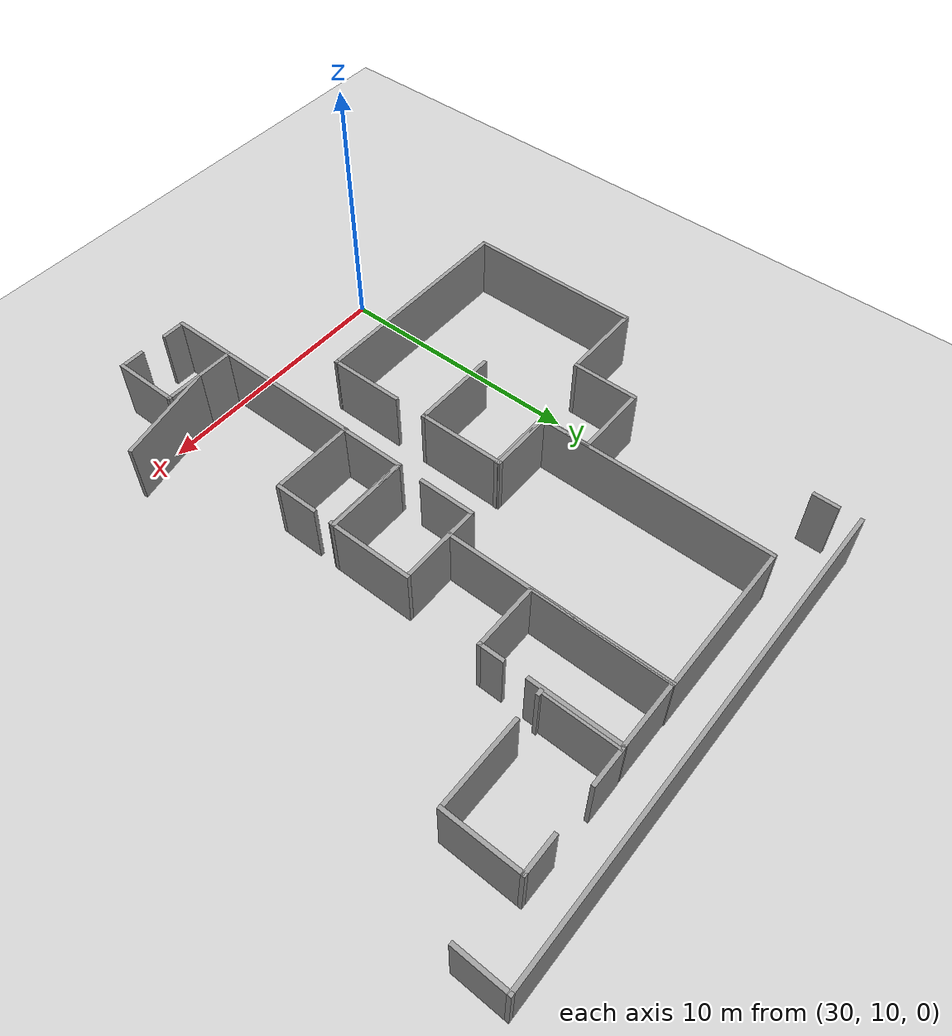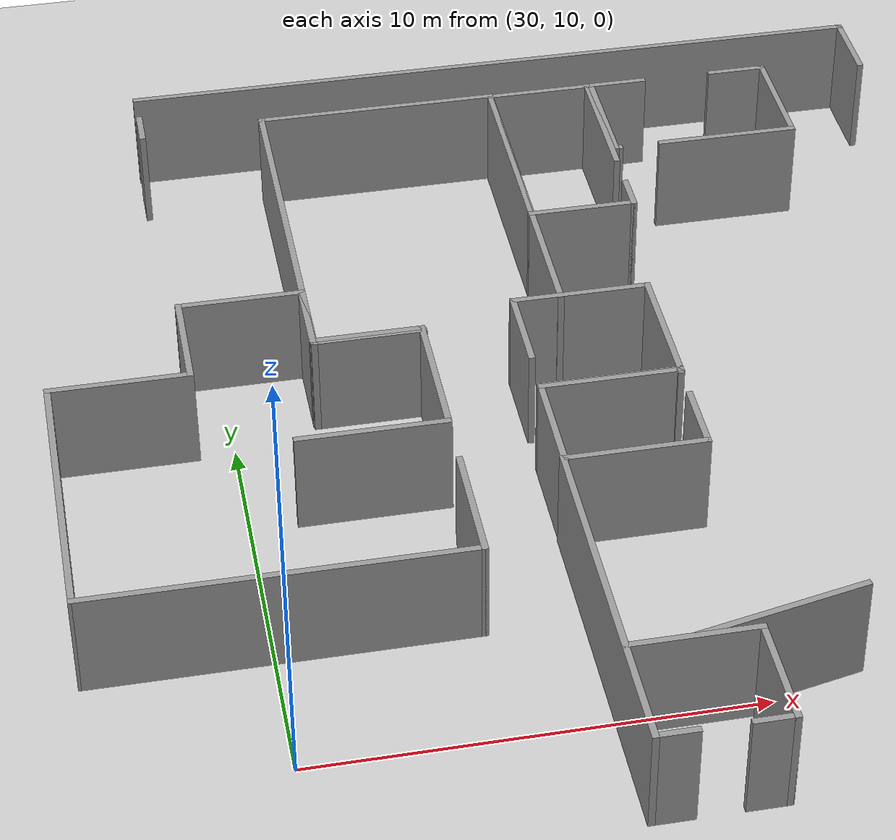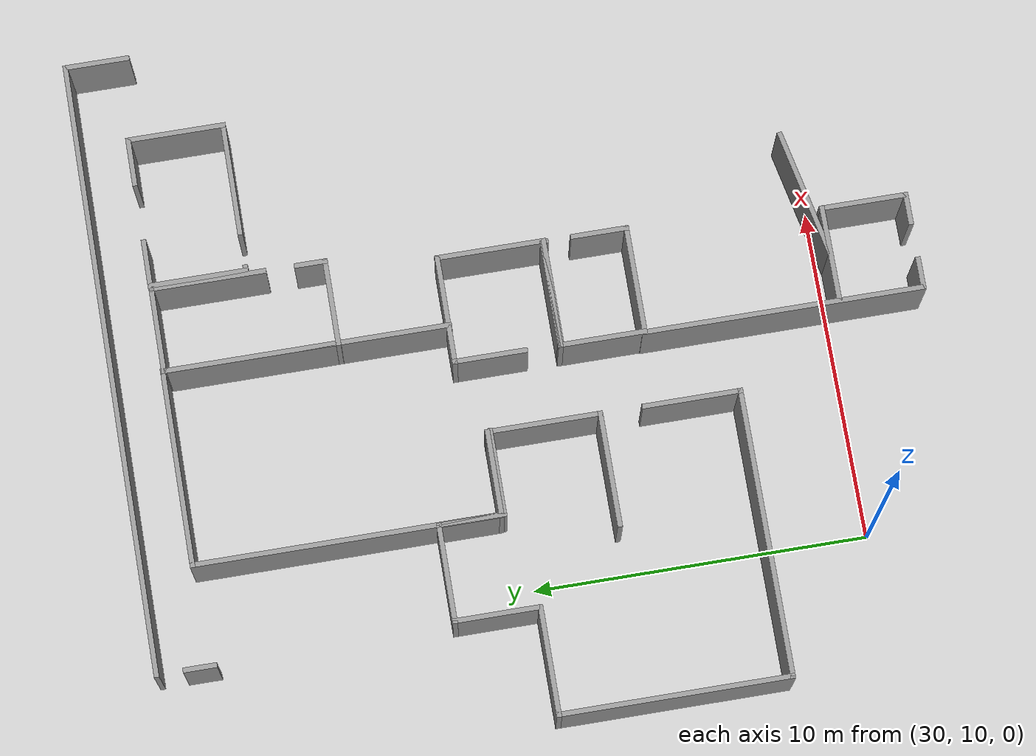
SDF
<sdf version="1.6">
 <world name="default">
  <model name="ground_plane">
   <static>1</static>
   <link name="link">
    <collision name="collision">
     <geometry><plane><normal>0 0 1</normal><size>100 100</size></plane></geometry>
     <surface>
      <contact><collide_bitmask>65535</collide_bitmask></contact>
      <friction><ode><mu>100</mu><mu2>50</mu2></ode></friction>
     </surface>
    </collision>
    <visual name="visual">
     <cast_shadows>0</cast_shadows>
     <geometry><plane><normal>0 0 1</normal><size>100 100</size></plane></geometry>
     <material>
      <script><uri>file://media/materials/scripts/gazebo.material</uri><name>Gazebo/Grey</name></script>
     </material>
    </visual>
   </link>
  </model>
  <model name="198">
   <pose>30.2166 17.8159 0 0 -0 0</pose>
   <link name="Wall_0">
    <collision name="Wall_0_Collision">
     <geometry><box><size>8.701 0.15 2.5</size></box></geometry>
     <pose>0 0 1.25 0 -0 0</pose>
    </collision>
    <visual name="Wall_0_Visual">
     <pose>0 0 1.25 0 -0 0</pose>
     <geometry><box><size>8.701 0.15 2.5</size></box></geometry>
     <material>
      <script><uri>file://media/materials/scripts/gazebo.material</uri><name>Gazebo/Grey</name></script>
      <ambient>1 1 1 1</ambient>
     </material>
     <meta><layer>0</layer></meta>
    </visual>
    <pose>0 -4.6835 0 0 -0 -0.000117</pose>
   </link>
   <link name="Wall_10">
    <collision name="Wall_10_Collision">
     <geometry><box><size>3.5 0.15 2.5</size></box></geometry>
     <pose>0 0 1.25 0 -0 0</pose>
    </collision>
    <visual name="Wall_10_Visual">
     <pose>0 0 1.25 0 -0 0</pose>
     <geometry><box><size>3.5 0.15 2.5</size></box></geometry>
     <material>
      <script><uri>file://media/materials/scripts/gazebo.material</uri><name>Gazebo/Grey</name></script>
      <ambient>1 1 1 1</ambient>
     </material>
     <meta><layer>0</layer></meta>
    </visual>
    <pose>2.6005 -0.515996 0 0 -0 3.14159</pose>
   </link>
   <link name="Wall_12">
    <collision name="Wall_12_Collision">
     <geometry><box><size>3 0.15 2.5</size></box></geometry>
     <pose>0 0 1.25 0 -0 0</pose>
    </collision>
    <visual name="Wall_12_Visual">
     <pose>0 0 1.25 0 -0 0</pose>
     <geometry><box><size>3 0.15 2.5</size></box></geometry>
     <material>
      <script><uri>file://media/materials/scripts/gazebo.material</uri><name>Gazebo/Grey</name></script>
      <ambient>1 1 1 1</ambient>
     </material>
     <meta><layer>0</layer></meta>
    </visual>
    <pose>4.2755 -3.259 0 0 -0 1.5708</pose>
   </link>
   <link name="Wall_2">
    <collision name="Wall_2_Collision">
     <geometry><box><size>2.667 0.15 2.5</size></box></geometry>
     <pose>0 0 1.25 0 -0 0</pose>
    </collision>
    <visual name="Wall_2_Visual">
     <pose>0 0 1.25 0 -0 0</pose>
     <geometry><box><size>2.667 0.15 2.5</size></box></geometry>
     <material>
      <script><uri>file://media/materials/scripts/gazebo.material</uri><name>Gazebo/Grey</name></script>
      <ambient>1 1 1 1</ambient>
     </material>
     <meta><layer>0</layer></meta>
    </visual>
    <pose>3.017 2.834 0 0 -0 3.14159</pose>
   </link>
   <link name="Wall_3">
    <collision name="Wall_3_Collision">
     <geometry><box><size>2 0.15 2.5</size></box></geometry>
     <pose>0 0 1.25 0 -0 0</pose>
    </collision>
    <visual name="Wall_3_Visual">
     <pose>0 0 1.25 0 -0 0</pose>
     <geometry><box><size>2 0.15 2.5</size></box></geometry>
     <material>
      <script><uri>file://media/materials/scripts/gazebo.material</uri><name>Gazebo/Grey</name></script>
      <ambient>1 1 1 1</ambient>
     </material>
     <meta><layer>0</layer></meta>
    </visual>
    <pose>1.7585 3.759 0 0 -0 1.5708</pose>
   </link>
   <link name="Wall_4">
    <collision name="Wall_4_Collision">
     <geometry><box><size>3 0.15 2.5</size></box></geometry>
     <pose>0 0 1.25 0 -0 0</pose>
    </collision>
    <visual name="Wall_4_Visual">
     <pose>0 0 1.25 0 -0 0</pose>
     <geometry><box><size>3 0.15 2.5</size></box></geometry>
     <material>
      <script><uri>file://media/materials/scripts/gazebo.material</uri><name>Gazebo/Grey</name></script>
      <ambient>1 1 1 1</ambient>
     </material>
     <meta><layer>0</layer></meta>
    </visual>
    <pose>0.3335 4.684 0 0 -0 3.14159</pose>
   </link>
   <link name="Wall_5">
    <collision name="Wall_5_Collision">
     <geometry><box><size>2.667 0.15 2.5</size></box></geometry>
     <pose>0 0 1.25 0 -0 0</pose>
    </collision>
    <visual name="Wall_5_Visual">
     <pose>0 0 1.25 0 -0 0</pose>
     <geometry><box><size>2.667 0.15 2.5</size></box></geometry>
     <material>
      <script><uri>file://media/materials/scripts/gazebo.material</uri><name>Gazebo/Grey</name></script>
      <ambient>1 1 1 1</ambient>
     </material>
     <meta><layer>0</layer></meta>
    </visual>
    <pose>-1.0915 3.4255 0 0 -0 -1.5708</pose>
   </link>
   <link name="Wall_6">
    <collision name="Wall_6_Collision">
     <geometry><box><size>3.334 0.15 2.5</size></box></geometry>
     <pose>0 0 1.25 0 -0 0</pose>
    </collision>
    <visual name="Wall_6_Visual">
     <pose>0 0 1.25 0 -0 0</pose>
     <geometry><box><size>3.334 0.15 2.5</size></box></geometry>
     <material>
      <script><uri>file://media/materials/scripts/gazebo.material</uri><name>Gazebo/Grey</name></script>
      <ambient>1 1 1 1</ambient>
     </material>
     <meta><layer>0</layer></meta>
    </visual>
    <pose>-2.6835 2.167 0 0 -0 3.14159</pose>
   </link>
   <link name="Wall_7">
    <collision name="Wall_7_Collision">
     <geometry><box><size>7 0.15 2.5</size></box></geometry>
     <pose>0 0 1.25 0 -0 0</pose>
    </collision>
    <visual name="Wall_7_Visual">
     <pose>0 0 1.25 0 -0 0</pose>
     <geometry><box><size>7 0.15 2.5</size></box></geometry>
     <material>
      <script><uri>file://media/materials/scripts/gazebo.material</uri><name>Gazebo/Grey</name></script>
      <ambient>1 1 1 1</ambient>
     </material>
     <meta><layer>0</layer></meta>
    </visual>
    <pose>-4.2755 -1.258 0 0 -0 -1.5708</pose>
   </link>
   <link name="Wall_9">
    <collision name="Wall_9_Collision">
     <geometry><box><size>3.5 0.15 2.5</size></box></geometry>
     <pose>0 0 1.25 0 -0 0</pose>
    </collision>
    <visual name="Wall_9_Visual">
     <pose>0 0 1.25 0 -0 0</pose>
     <geometry><box><size>3.5 0.15 2.5</size></box></geometry>
     <material>
      <script><uri>file://media/materials/scripts/gazebo.material</uri><name>Gazebo/Grey</name></script>
      <ambient>1 1 1 1</ambient>
     </material>
     <meta><layer>0</layer></meta>
    </visual>
    <pose>4.2755 1.159 0 0 -0 -1.5708</pose>
   </link>
   <static>1</static>
  </model>
  <model name="113">
   <pose>34.9225 25.1588 0 0 -0 0</pose>
   <link name="Wall_27">
    <collision name="Wall_27_Collision">
     <geometry><box><size>2.667 0.15 2.5</size></box></geometry>
     <pose>0 0 1.25 0 -0 0</pose>
    </collision>
    <visual name="Wall_27_Visual">
     <pose>0 0 1.25 0 -0 0</pose>
     <geometry><box><size>2.667 0.15 2.5</size></box></geometry>
     <material>
      <script><uri>file://media/materials/scripts/gazebo.material</uri><name>Gazebo/Grey</name></script>
      <ambient>1 1 1 1</ambient>
     </material>
     <meta><layer>0</layer></meta>
    </visual>
    <pose>-1.6665 -4.5925 0 0 -0 3.14159</pose>
   </link>
   <link name="Wall_28">
    <collision name="Wall_28_Collision">
     <geometry><box><size>9.335 0.15 2.5</size></box></geometry>
     <pose>0 0 1.25 0 -0 0</pose>
    </collision>
    <visual name="Wall_28_Visual">
     <pose>0 0 1.25 0 -0 0</pose>
     <geometry><box><size>9.335 0.15 2.5</size></box></geometry>
     <material>
      <script><uri>file://media/materials/scripts/gazebo.material</uri><name>Gazebo/Grey</name></script>
      <ambient>1 1 1 1</ambient>
     </material>
     <meta><layer>0</layer></meta>
    </visual>
    <pose>-2.925 0 0 0 -0 1.5708</pose>
   </link>
   <link name="Wall_29">
    <collision name="Wall_29_Collision">
     <geometry><box><size>6 0.15 2.5</size></box></geometry>
     <pose>0 0 1.25 0 -0 0</pose>
    </collision>
    <visual name="Wall_29_Visual">
     <pose>0 0 1.25 0 -0 0</pose>
     <geometry><box><size>6 0.15 2.5</size></box></geometry>
     <material>
      <script><uri>file://media/materials/scripts/gazebo.material</uri><name>Gazebo/Grey</name></script>
      <ambient>1 1 1 1</ambient>
     </material>
     <meta><layer>0</layer></meta>
    </visual>
    <pose>-0 4.5925 0 0 -0 0</pose>
   </link>
   <link name="Wall_30">
    <collision name="Wall_30_Collision">
     <geometry><box><size>8.668 0.15 2.5</size></box></geometry>
     <pose>0 0 1.25 0 -0 0</pose>
    </collision>
    <visual name="Wall_30_Visual">
     <pose>0 0 1.25 0 -0 0</pose>
     <geometry><box><size>8.668 0.15 2.5</size></box></geometry>
     <material>
      <script><uri>file://media/materials/scripts/gazebo.material</uri><name>Gazebo/Grey</name></script>
      <ambient>1 1 1 1</ambient>
     </material>
     <meta><layer>0</layer></meta>
    </visual>
    <pose>2.925 0.3335 0 0 -0 -1.5708</pose>
   </link>
   <static>1</static>
  </model>
  <model name="195D">
   <pose>38.3049 16.8472 0 0 -0 0</pose>
   <link name="Wall_39">
    <collision name="Wall_39_Collision">
     <geometry><box><size>3.334 0.15 2.5</size></box></geometry>
     <pose>0 0 1.25 0 -0 0</pose>
    </collision>
    <visual name="Wall_39_Visual">
     <pose>0 0 1.25 0 -0 0</pose>
     <geometry><box><size>3.334 0.15 2.5</size></box></geometry>
     <material>
      <script><uri>file://media/materials/scripts/gazebo.material</uri><name>Gazebo/Grey</name></script>
      <ambient>1 1 1 1</ambient>
     </material>
     <meta><layer>0</layer></meta>
    </visual>
    <pose>0 -1.25855 0 0 -0 -6e-05</pose>
   </link>
   <link name="Wall_41">
    <collision name="Wall_41_Collision">
     <geometry><box><size>3.33384 0.15 2.5</size></box></geometry>
     <pose>0 0 1.25 0 -0 0</pose>
    </collision>
    <visual name="Wall_41_Visual">
     <pose>0 0 1.25 0 -0 0</pose>
     <geometry><box><size>3.33384 0.15 2.5</size></box></geometry>
     <material>
      <script><uri>file://media/materials/scripts/gazebo.material</uri><name>Gazebo/Grey</name></script>
      <ambient>1 1 1 1</ambient>
     </material>
     <meta><layer>0</layer></meta>
    </visual>
    <pose>0 1.25846 0 0 -0 3.14153</pose>
   </link>
   <link name="Wall_42">
    <collision name="Wall_42_Collision">
     <geometry><box><size>2.66719 0.15 2.5</size></box></geometry>
     <pose>0 0 1.25 0 -0 0</pose>
    </collision>
    <visual name="Wall_42_Visual">
     <pose>0 0 1.25 0 -0 0</pose>
     <geometry><box><size>2.66719 0.15 2.5</size></box></geometry>
     <material>
      <script><uri>file://media/materials/scripts/gazebo.material</uri><name>Gazebo/Grey</name></script>
      <ambient>1 1 1 1</ambient>
     </material>
     <meta><layer>0</layer></meta>
    </visual>
    <pose>-1.59192 5e-05 0 0 -0 -1.5708</pose>
   </link>
   <link name="Wall_44">
    <collision name="Wall_44_Collision">
     <geometry><box><size>1.75 0.15 2.5</size></box></geometry>
     <pose>0 0 1.25 0 -0 0</pose>
    </collision>
    <visual name="Wall_44_Visual">
     <pose>0 0 1.25 0 -0 0</pose>
     <geometry><box><size>1.75 0.15 2.5</size></box></geometry>
     <material>
      <script><uri>file://media/materials/scripts/gazebo.material</uri><name>Gazebo/Grey</name></script>
      <ambient>1 1 1 1</ambient>
     </material>
     <meta><layer>0</layer></meta>
    </visual>
    <pose>1.59192 -0.45864 0 0 -0 1.5708</pose>
   </link>
   <link name="Wall_46">
    <collision name="Wall_46_Collision">
     <geometry><box><size>0.25 0.15 2.5</size></box></geometry>
     <pose>0 0 1.25 0 -0 0</pose>
    </collision>
    <visual name="Wall_46_Visual">
     <pose>0 0 1.25 0 -0 0</pose>
     <geometry><box><size>0.25 0.15 2.5</size></box></geometry>
     <material>
      <script><uri>file://media/materials/scripts/gazebo.material</uri><name>Gazebo/Grey</name></script>
      <ambient>1 1 1 1</ambient>
     </material>
     <meta><layer>0</layer></meta>
    </visual>
    <pose>1.59192 1.20836 0 0 -0 -1.5708</pose>
   </link>
   <static>1</static>
  </model>
  <model name="195C">
   <pose>38.1154 11.4255 0 0 -0 0</pose>
   <link name="Wall_49">
    <collision name="Wall_49_Collision">
     <geometry><box><size>8.5 0.15 2.5</size></box></geometry>
     <pose>0 0 1.25 0 -0 0</pose>
    </collision>
    <visual name="Wall_49_Visual">
     <pose>0 0 1.25 0 -0 0</pose>
     <geometry><box><size>8.5 0.15 2.5</size></box></geometry>
     <material>
      <script><uri>file://media/materials/scripts/gazebo.material</uri><name>Gazebo/Grey</name></script>
      <ambient>1 1 1 1</ambient>
     </material>
     <meta><layer>0</layer></meta>
    </visual>
    <pose>-1.425 0 0 0 -0 -1.5708</pose>
   </link>
   <link name="Wall_51">
    <collision name="Wall_51_Collision">
     <geometry><box><size>2.667 0.15 2.5</size></box></geometry>
     <pose>0 0 1.25 0 -0 0</pose>
    </collision>
    <visual name="Wall_51_Visual">
     <pose>0 0 1.25 0 -0 0</pose>
     <geometry><box><size>2.667 0.15 2.5</size></box></geometry>
     <material>
      <script><uri>file://media/materials/scripts/gazebo.material</uri><name>Gazebo/Grey</name></script>
      <ambient>1 1 1 1</ambient>
     </material>
     <meta><layer>0</layer></meta>
    </visual>
    <pose>1.425 -2.9165 0 0 -0 1.5708</pose>
   </link>
   <link name="Wall_52">
    <collision name="Wall_52_Collision">
     <geometry><box><size>3 0.15 2.5</size></box></geometry>
     <pose>0 0 1.25 0 -0 0</pose>
    </collision>
    <visual name="Wall_52_Visual">
     <pose>0 0 1.25 0 -0 0</pose>
     <geometry><box><size>3 0.15 2.5</size></box></geometry>
     <material>
      <script><uri>file://media/materials/scripts/gazebo.material</uri><name>Gazebo/Grey</name></script>
      <ambient>1 1 1 1</ambient>
     </material>
     <meta><layer>0</layer></meta>
    </visual>
    <pose>0 -1.658 0 0 -0 3.14159</pose>
   </link>
   <link name="Wall_54">
    <collision name="Wall_54_Collision">
     <geometry><box><size>1 0.15 2.5</size></box></geometry>
     <pose>0 0 1.25 0 -0 0</pose>
    </collision>
    <visual name="Wall_54_Visual">
     <pose>0 0 1.25 0 -0 0</pose>
     <geometry><box><size>1 0.15 2.5</size></box></geometry>
     <material>
      <script><uri>file://media/materials/scripts/gazebo.material</uri><name>Gazebo/Grey</name></script>
      <ambient>1 1 1 1</ambient>
     </material>
     <meta><layer>0</layer></meta>
    </visual>
    <pose>1 -4.175 0 0 -0 3.14159</pose>
   </link>
   <link name="Wall_56">
    <collision name="Wall_56_Collision">
     <geometry><box><size>1 0.15 2.5</size></box></geometry>
     <pose>0 0 1.25 0 -0 0</pose>
    </collision>
    <visual name="Wall_56_Visual">
     <pose>0 0 1.25 0 -0 0</pose>
     <geometry><box><size>1 0.15 2.5</size></box></geometry>
     <material>
      <script><uri>file://media/materials/scripts/gazebo.material</uri><name>Gazebo/Grey</name></script>
      <ambient>1 1 1 1</ambient>
     </material>
     <meta><layer>0</layer></meta>
    </visual>
    <pose>-1 -4.175 0 0 -0 3.14159</pose>
   </link>
   <static>1</static>
  </model>
  <model name="4m_wall_1">
   <link name="Wall_0">
    <pose>0 0 0 0 -0 1.5708</pose>
    <visual name="Wall_0_Visual">
     <pose>0 0 1.25 0 -0 0</pose>
     <geometry><box><size>4 0.15 2.5</size></box></geometry>
     <material>
      <script><uri>file://media/materials/scripts/gazebo.material</uri><name>Gazebo/Grey</name></script>
      <ambient>1 1 1 1</ambient>
      <shader type="pixel"/>
     </material>
     <meta><layer>0</layer></meta>
    </visual>
    <collision name="Wall_0_Collision">
     <pose>0 0 1.25 0 -0 0</pose>
     <geometry><box><size>4 0.15 2.5</size></box></geometry>
     <surface>
      <friction>
       <ode><mu>1</mu><mu2>1</mu2><fdir1>0 0 0</fdir1><slip1>0</slip1><slip2>0</slip2></ode>
       <torsional>
        <coefficient>1</coefficient>
        <patch_radius>0</patch_radius>
        <surface_radius>0</surface_radius>
        <use_patch_radius>1</use_patch_radius>
        <ode><slip>0</slip></ode>
       </torsional>
      </friction>
      <bounce><restitution_coefficient>0</restitution_coefficient><threshold>1e+06</threshold></bounce>
      <contact>
       <collide_without_contact>0</collide_without_contact>
       <collide_without_contact_bitmask>1</collide_without_contact_bitmask>
       <collide_bitmask>1</collide_bitmask>
       <ode>
        <soft_cfm>0</soft_cfm>
        <soft_erp>0.2</soft_erp>
        <kp>1e+13</kp>
        <kd>1</kd>
        <max_vel>0.01</max_vel>
        <min_depth>0</min_depth>
       </ode>
       <bullet>
        <split_impulse>1</split_impulse>
        <split_impulse_penetration_threshold>-0.01</split_impulse_penetration_threshold>
        <soft_cfm>0</soft_cfm>
        <soft_erp>0.2</soft_erp>
        <kp>1e+13</kp>
        <kd>1</kd>
       </bullet>
      </contact>
     </surface>
    </collision>
   </link>
   <static>1</static>
   <pose>40.0909 10.1885 0 0 0 -1.36305</pose>
  </model>
  <model name="112C">
   <link name="Wall_100">
    <pose>1.584 1.425 0 0 -0 3.14159</pose>
    <visual name="Wall_100_Visual">
     <pose>0 0 1.25 0 -0 0</pose>
     <geometry><box><size>1.5 0.15 2.5</size></box></geometry>
     <material>
      <script><uri>file://media/materials/scripts/gazebo.material</uri><name>Gazebo/Grey</name></script>
      <ambient>1 1 1 1</ambient>
      <shader type="pixel"/>
     </material>
     <meta><layer>0</layer></meta>
    </visual>
    <collision name="Wall_100_Collision">
     <pose>0 0 1.25 0 -0 0</pose>
     <geometry><box><size>1.5 0.15 2.5</size></box></geometry>
     <surface>
      <friction>
       <ode><mu>1</mu><mu2>1</mu2><fdir1>0 0 0</fdir1><slip1>0</slip1><slip2>0</slip2></ode>
       <torsional>
        <coefficient>1</coefficient>
        <patch_radius>0</patch_radius>
        <surface_radius>0</surface_radius>
        <use_patch_radius>1</use_patch_radius>
        <ode><slip>0</slip></ode>
       </torsional>
      </friction>
      <bounce><restitution_coefficient>0</restitution_coefficient><threshold>1e+06</threshold></bounce>
      <contact>
       <collide_without_contact>0</collide_without_contact>
       <collide_without_contact_bitmask>1</collide_without_contact_bitmask>
       <collide_bitmask>1</collide_bitmask>
       <ode>
        <soft_cfm>0</soft_cfm>
        <soft_erp>0.2</soft_erp>
        <kp>1e+13</kp>
        <kd>1</kd>
        <max_vel>0.01</max_vel>
        <min_depth>0</min_depth>
       </ode>
       <bullet>
        <split_impulse>1</split_impulse>
        <split_impulse_penetration_threshold>-0.01</split_impulse_penetration_threshold>
        <soft_cfm>0</soft_cfm>
        <soft_erp>0.2</soft_erp>
        <kp>1e+13</kp>
        <kd>1</kd>
       </bullet>
      </contact>
     </surface>
    </collision>
   </link>
   <link name="Wall_102">
    <pose>-1.584 1.425 0 0 -0 3.14159</pose>
    <visual name="Wall_102_Visual">
     <pose>0 0 1.25 0 -0 0</pose>
     <geometry><box><size>1.5 0.15 2.5</size></box></geometry>
     <material>
      <script><uri>file://media/materials/scripts/gazebo.material</uri><name>Gazebo/Grey</name></script>
      <ambient>1 1 1 1</ambient>
      <shader type="pixel"/>
     </material>
     <meta><layer>0</layer></meta>
    </visual>
    <collision name="Wall_102_Collision">
     <pose>0 0 1.25 0 -0 0</pose>
     <geometry><box><size>1.5 0.15 2.5</size></box></geometry>
     <surface>
      <friction>
       <ode><mu>1</mu><mu2>1</mu2><fdir1>0 0 0</fdir1><slip1>0</slip1><slip2>0</slip2></ode>
       <torsional>
        <coefficient>1</coefficient>
        <patch_radius>0</patch_radius>
        <surface_radius>0</surface_radius>
        <use_patch_radius>1</use_patch_radius>
        <ode><slip>0</slip></ode>
       </torsional>
      </friction>
      <bounce><restitution_coefficient>0</restitution_coefficient><threshold>1e+06</threshold></bounce>
      <contact>
       <collide_without_contact>0</collide_without_contact>
       <collide_without_contact_bitmask>1</collide_without_contact_bitmask>
       <collide_bitmask>1</collide_bitmask>
       <ode>
        <soft_cfm>0</soft_cfm>
        <soft_erp>0.2</soft_erp>
        <kp>1e+13</kp>
        <kd>1</kd>
        <max_vel>0.01</max_vel>
        <min_depth>0</min_depth>
       </ode>
       <bullet>
        <split_impulse>1</split_impulse>
        <split_impulse_penetration_threshold>-0.01</split_impulse_penetration_threshold>
        <soft_cfm>0</soft_cfm>
        <soft_erp>0.2</soft_erp>
        <kp>1e+13</kp>
        <kd>1</kd>
       </bullet>
      </contact>
     </surface>
    </collision>
   </link>
   <link name="Wall_104">
    <pose>0.584 -1.425 0 0 -0 3.14159</pose>
    <visual name="Wall_104_Visual">
     <pose>0 0 1.25 0 -0 0</pose>
     <geometry><box><size>3.5 0.15 2.5</size></box></geometry>
     <material>
      <script><uri>file://media/materials/scripts/gazebo.material</uri><name>Gazebo/Grey</name></script>
      <ambient>1 1 1 1</ambient>
      <shader type="pixel"/>
     </material>
     <meta><layer>0</layer></meta>
    </visual>
    <collision name="Wall_104_Collision">
     <pose>0 0 1.25 0 -0 0</pose>
     <geometry><box><size>3.5 0.15 2.5</size></box></geometry>
     <surface>
      <friction>
       <ode><mu>1</mu><mu2>1</mu2><fdir1>0 0 0</fdir1><slip1>0</slip1><slip2>0</slip2></ode>
       <torsional>
        <coefficient>1</coefficient>
        <patch_radius>0</patch_radius>
        <surface_radius>0</surface_radius>
        <use_patch_radius>1</use_patch_radius>
        <ode><slip>0</slip></ode>
       </torsional>
      </friction>
      <bounce><restitution_coefficient>0</restitution_coefficient><threshold>1e+06</threshold></bounce>
      <contact>
       <collide_without_contact>0</collide_without_contact>
       <collide_without_contact_bitmask>1</collide_without_contact_bitmask>
       <collide_bitmask>1</collide_bitmask>
       <ode>
        <soft_cfm>0</soft_cfm>
        <soft_erp>0.2</soft_erp>
        <kp>1e+13</kp>
        <kd>1</kd>
        <max_vel>0.01</max_vel>
        <min_depth>0</min_depth>
       </ode>
       <bullet>
        <split_impulse>1</split_impulse>
        <split_impulse_penetration_threshold>-0.01</split_impulse_penetration_threshold>
        <soft_cfm>0</soft_cfm>
        <soft_erp>0.2</soft_erp>
        <kp>1e+13</kp>
        <kd>1</kd>
       </bullet>
      </contact>
     </surface>
    </collision>
   </link>
   <link name="Wall_106">
    <pose>-2.209 -1.425 0 0 -0 0</pose>
    <visual name="Wall_106_Visual">
     <pose>0 0 1.25 0 -0 0</pose>
     <geometry><box><size>0.25 0.15 2.5</size></box></geometry>
     <material>
      <script><uri>file://media/materials/scripts/gazebo.material</uri><name>Gazebo/Grey</name></script>
      <ambient>1 1 1 1</ambient>
      <shader type="pixel"/>
     </material>
     <meta><layer>0</layer></meta>
    </visual>
    <collision name="Wall_106_Collision">
     <pose>0 0 1.25 0 -0 0</pose>
     <geometry><box><size>0.25 0.15 2.5</size></box></geometry>
     <surface>
      <friction>
       <ode><mu>1</mu><mu2>1</mu2><fdir1>0 0 0</fdir1><slip1>0</slip1><slip2>0</slip2></ode>
       <torsional>
        <coefficient>1</coefficient>
        <patch_radius>0</patch_radius>
        <surface_radius>0</surface_radius>
        <use_patch_radius>1</use_patch_radius>
        <ode><slip>0</slip></ode>
       </torsional>
      </friction>
      <bounce><restitution_coefficient>0</restitution_coefficient><threshold>1e+06</threshold></bounce>
      <contact>
       <collide_without_contact>0</collide_without_contact>
       <collide_without_contact_bitmask>1</collide_without_contact_bitmask>
       <collide_bitmask>1</collide_bitmask>
       <ode>
        <soft_cfm>0</soft_cfm>
        <soft_erp>0.2</soft_erp>
        <kp>1e+13</kp>
        <kd>1</kd>
        <max_vel>0.01</max_vel>
        <min_depth>0</min_depth>
       </ode>
       <bullet>
        <split_impulse>1</split_impulse>
        <split_impulse_penetration_threshold>-0.01</split_impulse_penetration_threshold>
        <soft_cfm>0</soft_cfm>
        <soft_erp>0.2</soft_erp>
        <kp>1e+13</kp>
        <kd>1</kd>
       </bullet>
      </contact>
     </surface>
    </collision>
   </link>
   <link name="Wall_96">
    <pose>2.259 0 0 0 -0 1.5708</pose>
    <visual name="Wall_96_Visual">
     <pose>0 0 1.25 0 -0 0</pose>
     <geometry><box><size>3 0.15 2.5</size></box></geometry>
     <material>
      <script><uri>file://media/materials/scripts/gazebo.material</uri><name>Gazebo/Grey</name></script>
      <ambient>1 1 1 1</ambient>
      <shader type="pixel"/>
     </material>
     <meta><layer>0</layer></meta>
    </visual>
    <collision name="Wall_96_Collision">
     <pose>0 0 1.25 0 -0 0</pose>
     <geometry><box><size>3 0.15 2.5</size></box></geometry>
     <surface>
      <friction>
       <ode><mu>1</mu><mu2>1</mu2><fdir1>0 0 0</fdir1><slip1>0</slip1><slip2>0</slip2></ode>
       <torsional>
        <coefficient>1</coefficient>
        <patch_radius>0</patch_radius>
        <surface_radius>0</surface_radius>
        <use_patch_radius>1</use_patch_radius>
        <ode><slip>0</slip></ode>
       </torsional>
      </friction>
      <bounce><restitution_coefficient>0</restitution_coefficient><threshold>1e+06</threshold></bounce>
      <contact>
       <collide_without_contact>0</collide_without_contact>
       <collide_without_contact_bitmask>1</collide_without_contact_bitmask>
       <collide_bitmask>1</collide_bitmask>
       <ode>
        <soft_cfm>0</soft_cfm>
        <soft_erp>0.2</soft_erp>
        <kp>1e+13</kp>
        <kd>1</kd>
        <max_vel>0.01</max_vel>
        <min_depth>0</min_depth>
       </ode>
       <bullet>
        <split_impulse>1</split_impulse>
        <split_impulse_penetration_threshold>-0.01</split_impulse_penetration_threshold>
        <soft_cfm>0</soft_cfm>
        <soft_erp>0.2</soft_erp>
        <kp>1e+13</kp>
        <kd>1</kd>
       </bullet>
      </contact>
     </surface>
    </collision>
   </link>
   <link name="Wall_98">
    <pose>-2.259 0 0 0 0 -1.5708</pose>
    <visual name="Wall_98_Visual">
     <pose>0 0 1.25 0 -0 0</pose>
     <geometry><box><size>3 0.15 2.5</size></box></geometry>
     <material>
      <script><uri>file://media/materials/scripts/gazebo.material</uri><name>Gazebo/Grey</name></script>
      <ambient>1 1 1 1</ambient>
      <shader type="pixel"/>
     </material>
     <meta><layer>0</layer></meta>
    </visual>
    <collision name="Wall_98_Collision">
     <pose>0 0 1.25 0 -0 0</pose>
     <geometry><box><size>3 0.15 2.5</size></box></geometry>
     <surface>
      <friction>
       <ode><mu>1</mu><mu2>1</mu2><fdir1>0 0 0</fdir1><slip1>0</slip1><slip2>0</slip2></ode>
       <torsional>
        <coefficient>1</coefficient>
        <patch_radius>0</patch_radius>
        <surface_radius>0</surface_radius>
        <use_patch_radius>1</use_patch_radius>
        <ode><slip>0</slip></ode>
       </torsional>
      </friction>
      <bounce><restitution_coefficient>0</restitution_coefficient><threshold>1e+06</threshold></bounce>
      <contact>
       <collide_without_contact>0</collide_without_contact>
       <collide_without_contact_bitmask>1</collide_without_contact_bitmask>
       <collide_bitmask>1</collide_bitmask>
       <ode>
        <soft_cfm>0</soft_cfm>
        <soft_erp>0.2</soft_erp>
        <kp>1e+13</kp>
        <kd>1</kd>
        <max_vel>0.01</max_vel>
        <min_depth>0</min_depth>
       </ode>
       <bullet>
        <split_impulse>1</split_impulse>
        <split_impulse_penetration_threshold>-0.01</split_impulse_penetration_threshold>
        <soft_cfm>0</soft_cfm>
        <soft_erp>0.2</soft_erp>
        <kp>1e+13</kp>
        <kd>1</kd>
       </bullet>
      </contact>
     </surface>
    </collision>
   </link>
   <static>1</static>
   <pose>42.725 28.3095 0 0 -0 0</pose>
  </model>
  <model name="199C">
   <link name="Wall_58">
    <pose>9.26 0 0 0 -0 1.5708</pose>
    <visual name="Wall_58_Visual">
     <pose>0 0 1.25 0 -0 0</pose>
     <geometry><box><size>2 0.15 2.5</size></box></geometry>
     <material>
      <script><uri>file://media/materials/scripts/gazebo.material</uri><name>Gazebo/Grey</name></script>
      <ambient>1 1 1 1</ambient>
      <shader type="pixel"/>
     </material>
     <meta><layer>0</layer></meta>
    </visual>
    <collision name="Wall_58_Collision">
     <pose>0 0 1.25 0 -0 0</pose>
     <geometry><box><size>2 0.15 2.5</size></box></geometry>
     <surface>
      <friction>
       <ode><mu>1</mu><mu2>1</mu2><fdir1>0 0 0</fdir1><slip1>0</slip1><slip2>0</slip2></ode>
       <torsional>
        <coefficient>1</coefficient>
        <patch_radius>0</patch_radius>
        <surface_radius>0</surface_radius>
        <use_patch_radius>1</use_patch_radius>
        <ode><slip>0</slip></ode>
       </torsional>
      </friction>
      <bounce><restitution_coefficient>0</restitution_coefficient><threshold>1e+06</threshold></bounce>
      <contact>
       <collide_without_contact>0</collide_without_contact>
       <collide_without_contact_bitmask>1</collide_without_contact_bitmask>
       <collide_bitmask>1</collide_bitmask>
       <ode>
        <soft_cfm>0</soft_cfm>
        <soft_erp>0.2</soft_erp>
        <kp>1e+13</kp>
        <kd>1</kd>
        <max_vel>0.01</max_vel>
        <min_depth>0</min_depth>
       </ode>
       <bullet>
        <split_impulse>1</split_impulse>
        <split_impulse_penetration_threshold>-0.01</split_impulse_penetration_threshold>
        <soft_cfm>0</soft_cfm>
        <soft_erp>0.2</soft_erp>
        <kp>1e+13</kp>
        <kd>1</kd>
       </bullet>
      </contact>
     </surface>
    </collision>
   </link>
   <link name="Wall_59">
    <pose>0 0.924999 0 0 -0 3.14159</pose>
    <visual name="Wall_59_Visual">
     <pose>0 0 1.25 0 -0 0</pose>
     <geometry><box><size>18.67 0.15 2.5</size></box></geometry>
     <material>
      <script><uri>file://media/materials/scripts/gazebo.material</uri><name>Gazebo/Grey</name></script>
      <ambient>1 1 1 1</ambient>
      <shader type="pixel"/>
     </material>
     <meta><layer>0</layer></meta>
    </visual>
    <collision name="Wall_59_Collision">
     <pose>0 0 1.25 0 -0 0</pose>
     <geometry><box><size>18.67 0.15 2.5</size></box></geometry>
     <surface>
      <friction>
       <ode><mu>1</mu><mu2>1</mu2><fdir1>0 0 0</fdir1><slip1>0</slip1><slip2>0</slip2></ode>
       <torsional>
        <coefficient>1</coefficient>
        <patch_radius>0</patch_radius>
        <surface_radius>0</surface_radius>
        <use_patch_radius>1</use_patch_radius>
        <ode><slip>0</slip></ode>
       </torsional>
      </friction>
      <bounce><restitution_coefficient>0</restitution_coefficient><threshold>1e+06</threshold></bounce>
      <contact>
       <collide_without_contact>0</collide_without_contact>
       <collide_without_contact_bitmask>1</collide_without_contact_bitmask>
       <collide_bitmask>1</collide_bitmask>
       <ode>
        <soft_cfm>0</soft_cfm>
        <soft_erp>0.2</soft_erp>
        <kp>1e+13</kp>
        <kd>1</kd>
        <max_vel>0.01</max_vel>
        <min_depth>0</min_depth>
       </ode>
       <bullet>
        <split_impulse>1</split_impulse>
        <split_impulse_penetration_threshold>-0.01</split_impulse_penetration_threshold>
        <soft_cfm>0</soft_cfm>
        <soft_erp>0.2</soft_erp>
        <kp>1e+13</kp>
        <kd>1</kd>
       </bullet>
      </contact>
     </surface>
    </collision>
   </link>
   <link name="Wall_63">
    <pose>-9.26 -0.35 0 0 0 -1.5708</pose>
    <visual name="Wall_63_Visual">
     <pose>0 0 1.25 0 -0 0</pose>
     <geometry><box><size>1 0.15 2.5</size></box></geometry>
     <material>
      <script><uri>file://media/materials/scripts/gazebo.material</uri><name>Gazebo/Grey</name></script>
      <ambient>1 1 1 1</ambient>
      <shader type="pixel"/>
     </material>
     <meta><layer>0</layer></meta>
    </visual>
    <collision name="Wall_63_Collision">
     <pose>0 0 1.25 0 -0 0</pose>
     <geometry><box><size>1 0.15 2.5</size></box></geometry>
     <surface>
      <friction>
       <ode><mu>1</mu><mu2>1</mu2><fdir1>0 0 0</fdir1><slip1>0</slip1><slip2>0</slip2></ode>
       <torsional>
        <coefficient>1</coefficient>
        <patch_radius>0</patch_radius>
        <surface_radius>0</surface_radius>
        <use_patch_radius>1</use_patch_radius>
        <ode><slip>0</slip></ode>
       </torsional>
      </friction>
      <bounce><restitution_coefficient>0</restitution_coefficient><threshold>1e+06</threshold></bounce>
      <contact>
       <collide_without_contact>0</collide_without_contact>
       <collide_without_contact_bitmask>1</collide_without_contact_bitmask>
       <collide_bitmask>1</collide_bitmask>
       <ode>
        <soft_cfm>0</soft_cfm>
        <soft_erp>0.2</soft_erp>
        <kp>1e+13</kp>
        <kd>1</kd>
        <max_vel>0.01</max_vel>
        <min_depth>0</min_depth>
       </ode>
       <bullet>
        <split_impulse>1</split_impulse>
        <split_impulse_penetration_threshold>-0.01</split_impulse_penetration_threshold>
        <soft_cfm>0</soft_cfm>
        <soft_erp>0.2</soft_erp>
        <kp>1e+13</kp>
        <kd>1</kd>
       </bullet>
      </contact>
     </surface>
    </collision>
   </link>
   <static>1</static>
   <pose>38.2494 30.3314 0 0 -0 0</pose>
  </model>
  <model name="114">
   <link name="Wall_32">
    <pose>0 1.592 0 0 -0 0</pose>
    <visual name="Wall_32_Visual">
     <pose>0 0 1.25 0 -0 0</pose>
     <geometry><box><size>3.334 0.15 2.5</size></box></geometry>
     <material>
      <script><uri>file://media/materials/scripts/gazebo.material</uri><name>Gazebo/Grey</name></script>
      <ambient>1 1 1 1</ambient>
      <shader type="pixel"/>
     </material>
     <meta><layer>0</layer></meta>
    </visual>
    <collision name="Wall_32_Collision">
     <pose>0 0 1.25 0 -0 0</pose>
     <geometry><box><size>3.334 0.15 2.5</size></box></geometry>
     <surface>
      <friction>
       <ode><mu>1</mu><mu2>1</mu2><fdir1>0 0 0</fdir1><slip1>0</slip1><slip2>0</slip2></ode>
       <torsional>
        <coefficient>1</coefficient>
        <patch_radius>0</patch_radius>
        <surface_radius>0</surface_radius>
        <use_patch_radius>1</use_patch_radius>
        <ode><slip>0</slip></ode>
       </torsional>
      </friction>
      <bounce><restitution_coefficient>0</restitution_coefficient><threshold>1e+06</threshold></bounce>
      <contact>
       <collide_without_contact>0</collide_without_contact>
       <collide_without_contact_bitmask>1</collide_without_contact_bitmask>
       <collide_bitmask>1</collide_bitmask>
       <ode>
        <soft_cfm>0</soft_cfm>
        <soft_erp>0.2</soft_erp>
        <kp>1e+13</kp>
        <kd>1</kd>
        <max_vel>0.01</max_vel>
        <min_depth>0</min_depth>
       </ode>
       <bullet>
        <split_impulse>1</split_impulse>
        <split_impulse_penetration_threshold>-0.01</split_impulse_penetration_threshold>
        <soft_cfm>0</soft_cfm>
        <soft_erp>0.2</soft_erp>
        <kp>1e+13</kp>
        <kd>1</kd>
       </bullet>
      </contact>
     </surface>
    </collision>
   </link>
   <link name="Wall_33">
    <pose>1.592 0 0 0 0 -1.5708</pose>
    <visual name="Wall_33_Visual">
     <pose>0 0 1.25 0 -0 0</pose>
     <geometry><box><size>3.334 0.15 2.5</size></box></geometry>
     <material>
      <script><uri>file://media/materials/scripts/gazebo.material</uri><name>Gazebo/Grey</name></script>
      <ambient>1 1 1 1</ambient>
      <shader type="pixel"/>
     </material>
     <meta><layer>0</layer></meta>
    </visual>
    <collision name="Wall_33_Collision">
     <pose>0 0 1.25 0 -0 0</pose>
     <geometry><box><size>3.334 0.15 2.5</size></box></geometry>
     <surface>
      <friction>
       <ode><mu>1</mu><mu2>1</mu2><fdir1>0 0 0</fdir1><slip1>0</slip1><slip2>0</slip2></ode>
       <torsional>
        <coefficient>1</coefficient>
        <patch_radius>0</patch_radius>
        <surface_radius>0</surface_radius>
        <use_patch_radius>1</use_patch_radius>
        <ode><slip>0</slip></ode>
       </torsional>
      </friction>
      <bounce><restitution_coefficient>0</restitution_coefficient><threshold>1e+06</threshold></bounce>
      <contact>
       <collide_without_contact>0</collide_without_contact>
       <collide_without_contact_bitmask>1</collide_without_contact_bitmask>
       <collide_bitmask>1</collide_bitmask>
       <ode>
        <soft_cfm>0</soft_cfm>
        <soft_erp>0.2</soft_erp>
        <kp>1e+13</kp>
        <kd>1</kd>
        <max_vel>0.01</max_vel>
        <min_depth>0</min_depth>
       </ode>
       <bullet>
        <split_impulse>1</split_impulse>
        <split_impulse_penetration_threshold>-0.01</split_impulse_penetration_threshold>
        <soft_cfm>0</soft_cfm>
        <soft_erp>0.2</soft_erp>
        <kp>1e+13</kp>
        <kd>1</kd>
       </bullet>
      </contact>
     </surface>
    </collision>
   </link>
   <link name="Wall_34">
    <pose>0 -1.592 0 0 -0 3.14159</pose>
    <visual name="Wall_34_Visual">
     <pose>0 0 1.25 0 -0 0</pose>
     <geometry><box><size>3.334 0.15 2.5</size></box></geometry>
     <material>
      <script><uri>file://media/materials/scripts/gazebo.material</uri><name>Gazebo/Grey</name></script>
      <ambient>1 1 1 1</ambient>
      <shader type="pixel"/>
     </material>
     <meta><layer>0</layer></meta>
    </visual>
    <collision name="Wall_34_Collision">
     <pose>0 0 1.25 0 -0 0</pose>
     <geometry><box><size>3.334 0.15 2.5</size></box></geometry>
     <surface>
      <friction>
       <ode><mu>1</mu><mu2>1</mu2><fdir1>0 0 0</fdir1><slip1>0</slip1><slip2>0</slip2></ode>
       <torsional>
        <coefficient>1</coefficient>
        <patch_radius>0</patch_radius>
        <surface_radius>0</surface_radius>
        <use_patch_radius>1</use_patch_radius>
        <ode><slip>0</slip></ode>
       </torsional>
      </friction>
      <bounce><restitution_coefficient>0</restitution_coefficient><threshold>1e+06</threshold></bounce>
      <contact>
       <collide_without_contact>0</collide_without_contact>
       <collide_without_contact_bitmask>1</collide_without_contact_bitmask>
       <collide_bitmask>1</collide_bitmask>
       <ode>
        <soft_cfm>0</soft_cfm>
        <soft_erp>0.2</soft_erp>
        <kp>1e+13</kp>
        <kd>1</kd>
        <max_vel>0.01</max_vel>
        <min_depth>0</min_depth>
       </ode>
       <bullet>
        <split_impulse>1</split_impulse>
        <split_impulse_penetration_threshold>-0.01</split_impulse_penetration_threshold>
        <soft_cfm>0</soft_cfm>
        <soft_erp>0.2</soft_erp>
        <kp>1e+13</kp>
        <kd>1</kd>
       </bullet>
      </contact>
     </surface>
    </collision>
   </link>
   <link name="Wall_37">
    <pose>-1.592 0.542 0 0 0 -1.5708</pose>
    <visual name="Wall_37_Visual">
     <pose>0 0 1.25 0 -0 0</pose>
     <geometry><box><size>2.25 0.15 2.5</size></box></geometry>
     <material>
      <script><uri>file://media/materials/scripts/gazebo.material</uri><name>Gazebo/Grey</name></script>
      <ambient>1 1 1 1</ambient>
      <shader type="pixel"/>
     </material>
     <meta><layer>0</layer></meta>
    </visual>
    <collision name="Wall_37_Collision">
     <pose>0 0 1.25 0 -0 0</pose>
     <geometry><box><size>2.25 0.15 2.5</size></box></geometry>
     <surface>
      <friction>
       <ode><mu>1</mu><mu2>1</mu2><fdir1>0 0 0</fdir1><slip1>0</slip1><slip2>0</slip2></ode>
       <torsional>
        <coefficient>1</coefficient>
        <patch_radius>0</patch_radius>
        <surface_radius>0</surface_radius>
        <use_patch_radius>1</use_patch_radius>
        <ode><slip>0</slip></ode>
       </torsional>
      </friction>
      <bounce><restitution_coefficient>0</restitution_coefficient><threshold>1e+06</threshold></bounce>
      <contact>
       <collide_without_contact>0</collide_without_contact>
       <collide_without_contact_bitmask>1</collide_without_contact_bitmask>
       <collide_bitmask>1</collide_bitmask>
       <ode>
        <soft_cfm>0</soft_cfm>
        <soft_erp>0.2</soft_erp>
        <kp>1e+13</kp>
        <kd>1</kd>
        <max_vel>0.01</max_vel>
        <min_depth>0</min_depth>
       </ode>
       <bullet>
        <split_impulse>1</split_impulse>
        <split_impulse_penetration_threshold>-0.01</split_impulse_penetration_threshold>
        <soft_cfm>0</soft_cfm>
        <soft_erp>0.2</soft_erp>
        <kp>1e+13</kp>
        <kd>1</kd>
       </bullet>
      </contact>
     </surface>
    </collision>
   </link>
   <static>1</static>
   <pose>38.3202 19.6618 0 0 -0 0</pose>
  </model>
  <model name="112D">
   <link name="Wall_86">
    <pose>-0.000286 -2.59184 0 0 -0 0</pose>
    <visual name="Wall_86_Visual">
     <pose>0 0 1.25 0 -0 0</pose>
     <geometry><box><size>2.667 0.15 2.5</size></box></geometry>
     <material>
      <script><uri>file://media/materials/scripts/gazebo.material</uri><name>Gazebo/Grey</name></script>
      <ambient>1 1 1 1</ambient>
      <shader type="pixel"/>
     </material>
     <meta><layer>0</layer></meta>
    </visual>
    <collision name="Wall_86_Collision">
     <pose>0 0 1.25 0 -0 0</pose>
     <geometry><box><size>2.667 0.15 2.5</size></box></geometry>
     <surface>
      <friction>
       <ode><mu>1</mu><mu2>1</mu2><fdir1>0 0 0</fdir1><slip1>0</slip1><slip2>0</slip2></ode>
       <torsional>
        <coefficient>1</coefficient>
        <patch_radius>0</patch_radius>
        <surface_radius>0</surface_radius>
        <use_patch_radius>1</use_patch_radius>
        <ode><slip>0</slip></ode>
       </torsional>
      </friction>
      <bounce><restitution_coefficient>0</restitution_coefficient><threshold>1e+06</threshold></bounce>
      <contact>
       <collide_without_contact>0</collide_without_contact>
       <collide_without_contact_bitmask>1</collide_without_contact_bitmask>
       <collide_bitmask>1</collide_bitmask>
       <ode>
        <soft_cfm>0</soft_cfm>
        <soft_erp>0.2</soft_erp>
        <kp>1e+13</kp>
        <kd>1</kd>
        <max_vel>0.01</max_vel>
        <min_depth>0</min_depth>
       </ode>
       <bullet>
        <split_impulse>1</split_impulse>
        <split_impulse_penetration_threshold>-0.01</split_impulse_penetration_threshold>
        <soft_cfm>0</soft_cfm>
        <soft_erp>0.2</soft_erp>
        <kp>1e+13</kp>
        <kd>1</kd>
       </bullet>
      </contact>
     </surface>
    </collision>
   </link>
   <link name="Wall_88">
    <pose>9.9e-05 2.59184 0 0 -0 3.14159</pose>
    <visual name="Wall_88_Visual">
     <pose>0 0 1.25 0 -0 0</pose>
     <geometry><box><size>2.66738 0.15 2.5</size></box></geometry>
     <material>
      <script><uri>file://media/materials/scripts/gazebo.material</uri><name>Gazebo/Grey</name></script>
      <ambient>1 1 1 1</ambient>
      <shader type="pixel"/>
     </material>
     <meta><layer>0</layer></meta>
    </visual>
    <collision name="Wall_88_Collision">
     <pose>0 0 1.25 0 -0 0</pose>
     <geometry><box><size>2.66738 0.15 2.5</size></box></geometry>
     <surface>
      <friction>
       <ode><mu>1</mu><mu2>1</mu2><fdir1>0 0 0</fdir1><slip1>0</slip1><slip2>0</slip2></ode>
       <torsional>
        <coefficient>1</coefficient>
        <patch_radius>0</patch_radius>
        <surface_radius>0</surface_radius>
        <use_patch_radius>1</use_patch_radius>
        <ode><slip>0</slip></ode>
       </torsional>
      </friction>
      <bounce><restitution_coefficient>0</restitution_coefficient><threshold>1e+06</threshold></bounce>
      <contact>
       <collide_without_contact>0</collide_without_contact>
       <collide_without_contact_bitmask>1</collide_without_contact_bitmask>
       <collide_bitmask>1</collide_bitmask>
       <ode>
        <soft_cfm>0</soft_cfm>
        <soft_erp>0.2</soft_erp>
        <kp>1e+13</kp>
        <kd>1</kd>
        <max_vel>0.01</max_vel>
        <min_depth>0</min_depth>
       </ode>
       <bullet>
        <split_impulse>1</split_impulse>
        <split_impulse_penetration_threshold>-0.01</split_impulse_penetration_threshold>
        <soft_cfm>0</soft_cfm>
        <soft_erp>0.2</soft_erp>
        <kp>1e+13</kp>
        <kd>1</kd>
       </bullet>
      </contact>
     </surface>
    </collision>
   </link>
   <link name="Wall_89">
    <pose>-1.25859 0 0 0 0 -1.57087</pose>
    <visual name="Wall_89_Visual">
     <pose>0 0 1.25 0 -0 0</pose>
     <geometry><box><size>5.33368 0.15 2.5</size></box></geometry>
     <material>
      <script><uri>file://media/materials/scripts/gazebo.material</uri><name>Gazebo/Grey</name></script>
      <ambient>1 1 1 1</ambient>
      <shader type="pixel"/>
     </material>
     <meta><layer>0</layer></meta>
    </visual>
    <collision name="Wall_89_Collision">
     <pose>0 0 1.25 0 -0 0</pose>
     <geometry><box><size>5.33368 0.15 2.5</size></box></geometry>
     <surface>
      <friction>
       <ode><mu>1</mu><mu2>1</mu2><fdir1>0 0 0</fdir1><slip1>0</slip1><slip2>0</slip2></ode>
       <torsional>
        <coefficient>1</coefficient>
        <patch_radius>0</patch_radius>
        <surface_radius>0</surface_radius>
        <use_patch_radius>1</use_patch_radius>
        <ode><slip>0</slip></ode>
       </torsional>
      </friction>
      <bounce><restitution_coefficient>0</restitution_coefficient><threshold>1e+06</threshold></bounce>
      <contact>
       <collide_without_contact>0</collide_without_contact>
       <collide_without_contact_bitmask>1</collide_without_contact_bitmask>
       <collide_bitmask>1</collide_bitmask>
       <ode>
        <soft_cfm>0</soft_cfm>
        <soft_erp>0.2</soft_erp>
        <kp>1e+13</kp>
        <kd>1</kd>
        <max_vel>0.01</max_vel>
        <min_depth>0</min_depth>
       </ode>
       <bullet>
        <split_impulse>1</split_impulse>
        <split_impulse_penetration_threshold>-0.01</split_impulse_penetration_threshold>
        <soft_cfm>0</soft_cfm>
        <soft_erp>0.2</soft_erp>
        <kp>1e+13</kp>
        <kd>1</kd>
       </bullet>
      </contact>
     </surface>
    </collision>
   </link>
   <link name="Wall_91">
    <pose>1.2586 0.916842 0 0 0 -1.5708</pose>
    <visual name="Wall_91_Visual">
     <pose>0 0 1.25 0 -0 0</pose>
     <geometry><box><size>3.5 0.15 2.5</size></box></geometry>
     <material>
      <script><uri>file://media/materials/scripts/gazebo.material</uri><name>Gazebo/Grey</name></script>
      <ambient>1 1 1 1</ambient>
      <shader type="pixel"/>
     </material>
     <meta><layer>0</layer></meta>
    </visual>
    <collision name="Wall_91_Collision">
     <pose>0 0 1.25 0 -0 0</pose>
     <geometry><box><size>3.5 0.15 2.5</size></box></geometry>
     <surface>
      <friction>
       <ode><mu>1</mu><mu2>1</mu2><fdir1>0 0 0</fdir1><slip1>0</slip1><slip2>0</slip2></ode>
       <torsional>
        <coefficient>1</coefficient>
        <patch_radius>0</patch_radius>
        <surface_radius>0</surface_radius>
        <use_patch_radius>1</use_patch_radius>
        <ode><slip>0</slip></ode>
       </torsional>
      </friction>
      <bounce><restitution_coefficient>0</restitution_coefficient><threshold>1e+06</threshold></bounce>
      <contact>
       <collide_without_contact>0</collide_without_contact>
       <collide_without_contact_bitmask>1</collide_without_contact_bitmask>
       <collide_bitmask>1</collide_bitmask>
       <ode>
        <soft_cfm>0</soft_cfm>
        <soft_erp>0.2</soft_erp>
        <kp>1e+13</kp>
        <kd>1</kd>
        <max_vel>0.01</max_vel>
        <min_depth>0</min_depth>
       </ode>
       <bullet>
        <split_impulse>1</split_impulse>
        <split_impulse_penetration_threshold>-0.01</split_impulse_penetration_threshold>
        <soft_cfm>0</soft_cfm>
        <soft_erp>0.2</soft_erp>
        <kp>1e+13</kp>
        <kd>1</kd>
       </bullet>
      </contact>
     </surface>
    </collision>
   </link>
   <link name="Wall_93">
    <pose>1.25821 -2.16684 0 0 -0 1.5708</pose>
    <visual name="Wall_93_Visual">
     <pose>0 0 1.25 0 -0 0</pose>
     <geometry><box><size>1 0.15 2.5</size></box></geometry>
     <material>
      <script><uri>file://media/materials/scripts/gazebo.material</uri><name>Gazebo/Grey</name></script>
      <ambient>1 1 1 1</ambient>
      <shader type="pixel"/>
     </material>
     <meta><layer>0</layer></meta>
    </visual>
    <collision name="Wall_93_Collision">
     <pose>0 0 1.25 0 -0 0</pose>
     <geometry><box><size>1 0.15 2.5</size></box></geometry>
     <surface>
      <friction>
       <ode><mu>1</mu><mu2>1</mu2><fdir1>0 0 0</fdir1><slip1>0</slip1><slip2>0</slip2></ode>
       <torsional>
        <coefficient>1</coefficient>
        <patch_radius>0</patch_radius>
        <surface_radius>0</surface_radius>
        <use_patch_radius>1</use_patch_radius>
        <ode><slip>0</slip></ode>
       </torsional>
      </friction>
      <bounce><restitution_coefficient>0</restitution_coefficient><threshold>1e+06</threshold></bounce>
      <contact>
       <collide_without_contact>0</collide_without_contact>
       <collide_without_contact_bitmask>1</collide_without_contact_bitmask>
       <collide_bitmask>1</collide_bitmask>
       <ode>
        <soft_cfm>0</soft_cfm>
        <soft_erp>0.2</soft_erp>
        <kp>1e+13</kp>
        <kd>1</kd>
        <max_vel>0.01</max_vel>
        <min_depth>0</min_depth>
       </ode>
       <bullet>
        <split_impulse>1</split_impulse>
        <split_impulse_penetration_threshold>-0.01</split_impulse_penetration_threshold>
        <soft_cfm>0</soft_cfm>
        <soft_erp>0.2</soft_erp>
        <kp>1e+13</kp>
        <kd>1</kd>
       </bullet>
      </contact>
     </surface>
    </collision>
   </link>
   <static>1</static>
   <pose>39.104 27.1291 0 0 -0 0</pose>
  </model>
 </world>
</sdf>
